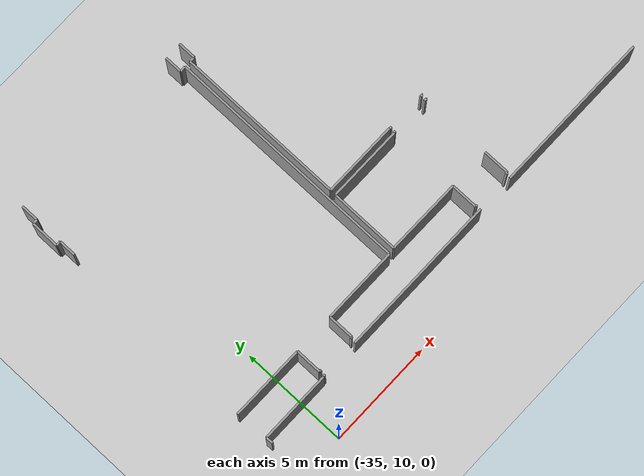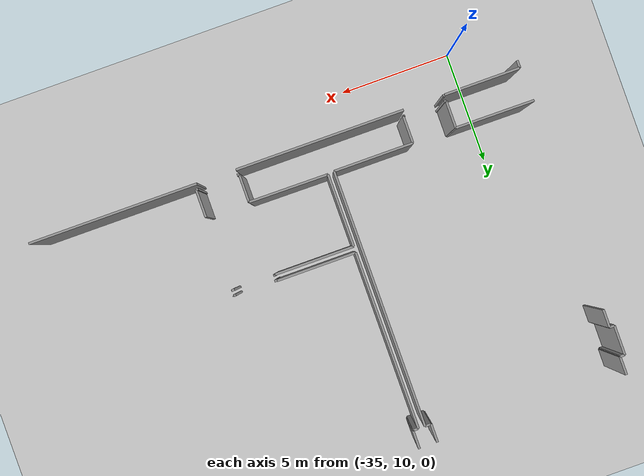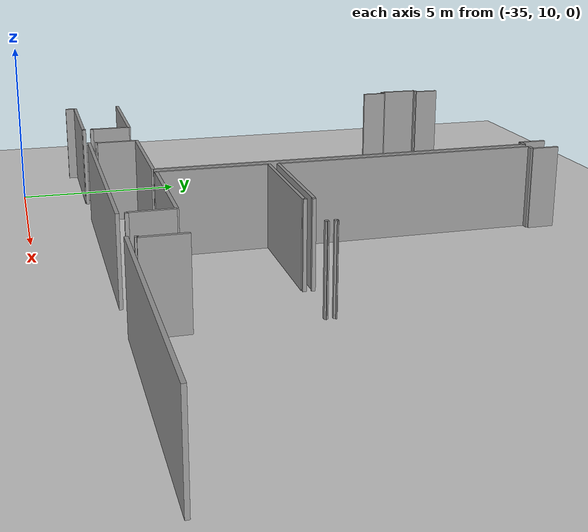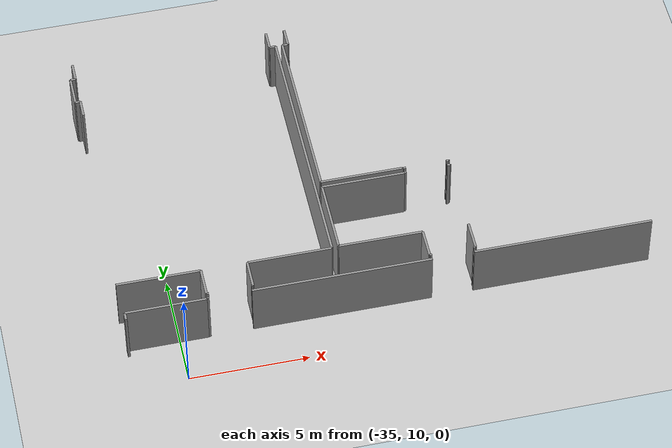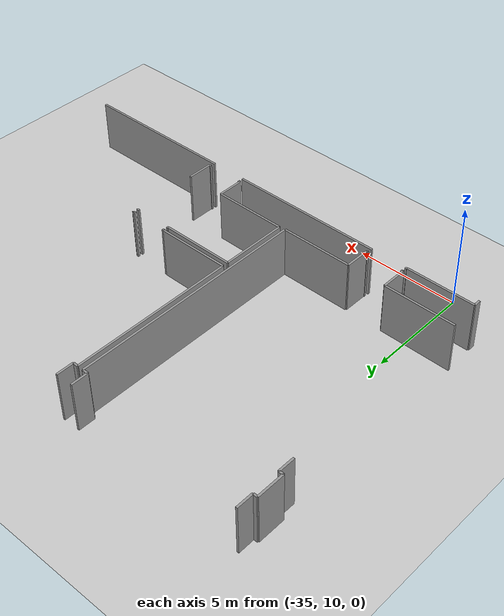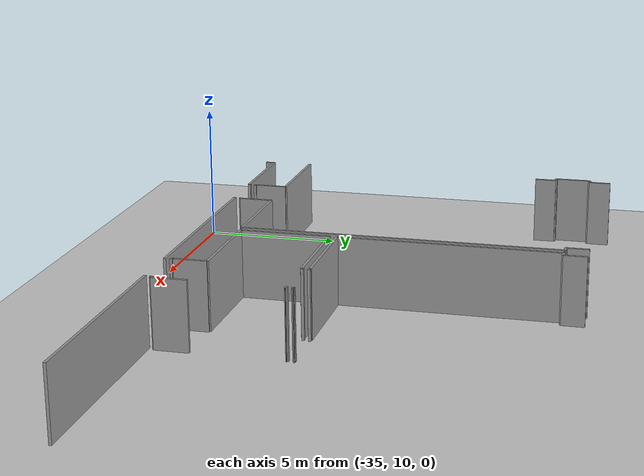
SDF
<sdf version="1.6">
 <world name="default">
  <model name="ground_plane">
   <static>1</static>
   <link name="link">
    <collision name="collision">
     <geometry><plane><normal>0 0 1</normal><size>100 100</size></plane></geometry>
     <surface><friction><ode><mu>100</mu><mu2>50</mu2></ode></friction></surface>
    </collision>
    <visual name="visual">
     <cast_shadows>0</cast_shadows>
     <geometry><plane><normal>0 0 1</normal><size>100 100</size></plane></geometry>
     <material>
      <script><uri>file://media/materials/scripts/gazebo.material</uri><name>Gazebo/Grey</name></script>
     </material>
    </visual>
   </link>
  </model>
  <model name="50045368">
   <static>1</static>
   <link name="Wall_37">
    <collision name="Wall_37_Collision">
     <geometry><box><size>0.793392630241 0.1 2.5</size></box></geometry>
     <pose>0.396696315121 0 1.25 0 0 0</pose>
    </collision>
    <visual name="Wall_37_Visual">
     <pose>0.396696315121 0 1.25 0 0 0</pose>
     <geometry><box><size>0.793392630241 0.1 2.5</size></box></geometry>
     <material>
      <script><uri>file://media/materials/scripts/gazebo.material</uri><name>Gazebo/Grey</name></script>
      <ambient>1 1 1 1</ambient>
     </material>
    </visual>
    <pose>15.7598475222 -2.925158831 0 0 0 1.57079632679</pose>
   </link>
   <link name="Wall_38">
    <collision name="Wall_38_Collision">
     <geometry><box><size>0.211817026684 0.1 2.5</size></box></geometry>
     <pose>0.105908513342 0 1.25 0 0 0</pose>
    </collision>
    <visual name="Wall_38_Visual">
     <pose>0.105908513342 0 1.25 0 0 0</pose>
     <geometry><box><size>0.211817026684 0.1 2.5</size></box></geometry>
     <material>
      <script><uri>file://media/materials/scripts/gazebo.material</uri><name>Gazebo/Grey</name></script>
      <ambient>1 1 1 1</ambient>
     </material>
    </visual>
    <pose>15.7598475222 -2.13176620076 0 0 0 3.14159265359</pose>
   </link>
   <link name="Wall_39">
    <collision name="Wall_39_Collision">
     <geometry><box><size>1.30470139771 0.1 2.5</size></box></geometry>
     <pose>0.652350698856 0 1.25 0 0 0</pose>
    </collision>
    <visual name="Wall_39_Visual">
     <pose>0.652350698856 0 1.25 0 0 0</pose>
     <geometry><box><size>1.30470139771 0.1 2.5</size></box></geometry>
     <material>
      <script><uri>file://media/materials/scripts/gazebo.material</uri><name>Gazebo/Grey</name></script>
      <ambient>1 1 1 1</ambient>
     </material>
    </visual>
    <pose>15.5480304956 -2.13176620076 0 0 0 1.57079632679</pose>
   </link>
   <link name="Wall_40">
    <collision name="Wall_40_Collision">
     <geometry><box><size>0.212452350699 0.1 2.5</size></box></geometry>
     <pose>0.106226175349 0 1.25 0 0 0</pose>
    </collision>
    <visual name="Wall_40_Visual">
     <pose>0.106226175349 0 1.25 0 0 0</pose>
     <geometry><box><size>0.212452350699 0.1 2.5</size></box></geometry>
     <material>
      <script><uri>file://media/materials/scripts/gazebo.material</uri><name>Gazebo/Grey</name></script>
      <ambient>1 1 1 1</ambient>
     </material>
    </visual>
    <pose>15.5480304956 -0.82706480305 0 0 0 0.0</pose>
   </link>
   <link name="Wall_41">
    <collision name="Wall_41_Collision">
     <geometry><box><size>0.812960609911 0.1 2.5</size></box></geometry>
     <pose>0.406480304956 0 1.25 0 0 0</pose>
    </collision>
    <visual name="Wall_41_Visual">
     <pose>0.406480304956 0 1.25 0 0 0</pose>
     <geometry><box><size>0.812960609911 0.1 2.5</size></box></geometry>
     <material>
      <script><uri>file://media/materials/scripts/gazebo.material</uri><name>Gazebo/Grey</name></script>
      <ambient>1 1 1 1</ambient>
     </material>
    </visual>
    <pose>15.7604828463 -0.82706480305 0 0 0 1.57079632679</pose>
   </link>
   <link name="Wall_42">
    <collision name="Wall_42_Collision">
     <geometry><box><size>0.80876747141 0.1 2.5</size></box></geometry>
     <pose>0.404383735705 0 1.25 0 0 0</pose>
    </collision>
    <visual name="Wall_42_Visual">
     <pose>0.404383735705 0 1.25 0 0 0</pose>
     <geometry><box><size>0.80876747141 0.1 2.5</size></box></geometry>
     <material>
      <script><uri>file://media/materials/scripts/gazebo.material</uri><name>Gazebo/Grey</name></script>
      <ambient>1 1 1 1</ambient>
     </material>
    </visual>
    <pose>24.2033036849 -0.0141041931385 0 0 0 -1.57079632679</pose>
   </link>
   <link name="Wall_43">
    <collision name="Wall_43_Collision">
     <geometry><box><size>0.266963151207 0.1 2.5</size></box></geometry>
     <pose>0.133481575604 0 1.25 0 0 0</pose>
    </collision>
    <visual name="Wall_43_Visual">
     <pose>0.133481575604 0 1.25 0 0 0</pose>
     <geometry><box><size>0.266963151207 0.1 2.5</size></box></geometry>
     <material>
      <script><uri>file://media/materials/scripts/gazebo.material</uri><name>Gazebo/Grey</name></script>
      <ambient>1 1 1 1</ambient>
     </material>
    </visual>
    <pose>24.2033036849 -0.822871664549 0 0 0 0.0</pose>
   </link>
   <link name="Wall_44">
    <collision name="Wall_44_Collision">
     <geometry><box><size>11.3900889454 0.1 2.5</size></box></geometry>
     <pose>5.69504447268 0 1.25 0 0 0</pose>
    </collision>
    <visual name="Wall_44_Visual">
     <pose>5.69504447268 0 1.25 0 0 0</pose>
     <geometry><box><size>11.3900889454 0.1 2.5</size></box></geometry>
     <material>
      <script><uri>file://media/materials/scripts/gazebo.material</uri><name>Gazebo/Grey</name></script>
      <ambient>1 1 1 1</ambient>
     </material>
    </visual>
    <pose>24.4702668361 -0.822871664549 0 0 0 -1.57079632679</pose>
   </link>
   <link name="Wall_45">
    <collision name="Wall_45_Collision">
     <geometry><box><size>3.51817026684 0.1 2.5</size></box></geometry>
     <pose>1.75908513342 0 1.25 0 0 0</pose>
    </collision>
    <visual name="Wall_45_Visual">
     <pose>1.75908513342 0 1.25 0 0 0</pose>
     <geometry><box><size>3.51817026684 0.1 2.5</size></box></geometry>
     <material>
      <script><uri>file://media/materials/scripts/gazebo.material</uri><name>Gazebo/Grey</name></script>
      <ambient>1 1 1 1</ambient>
     </material>
    </visual>
    <pose>24.4702668361 -12.2129606099 0 0 0 3.14159265359</pose>
   </link>
   <link name="Wall_46">
    <collision name="Wall_46_Collision">
     <geometry><box><size>1.20470139771 0.1 2.5</size></box></geometry>
     <pose>0.602350698856 0 1.25 0 0 0</pose>
    </collision>
    <visual name="Wall_46_Visual">
     <pose>0.602350698856 0 1.25 0 0 0</pose>
     <geometry><box><size>1.20470139771 0.1 2.5</size></box></geometry>
     <material>
      <script><uri>file://media/materials/scripts/gazebo.material</uri><name>Gazebo/Grey</name></script>
      <ambient>1 1 1 1</ambient>
     </material>
    </visual>
    <pose>20.9520965693 -12.2129606099 0 0 0 -1.57079632679</pose>
   </link>
   <link name="Wall_47">
    <collision name="Wall_47_Collision">
     <geometry><box><size>0.0749682337992 0.1 2.5</size></box></geometry>
     <pose>0.0374841168996 0 1.25 0 0 0</pose>
    </collision>
    <visual name="Wall_47_Visual">
     <pose>0.0374841168996 0 1.25 0 0 0</pose>
     <geometry><box><size>0.0749682337992 0.1 2.5</size></box></geometry>
     <material>
      <script><uri>file://media/materials/scripts/gazebo.material</uri><name>Gazebo/Grey</name></script>
      <ambient>1 1 1 1</ambient>
     </material>
    </visual>
    <pose>20.9520965693 -13.4176620076 0 0 0 3.14159265359</pose>
   </link>
   <link name="Wall_48">
    <collision name="Wall_48_Collision">
     <geometry><box><size>0.0914866581957 0.1 2.5</size></box></geometry>
     <pose>0.0457433290978 0 1.25 0 0 0</pose>
    </collision>
    <visual name="Wall_48_Visual">
     <pose>0.0457433290978 0 1.25 0 0 0</pose>
     <geometry><box><size>0.0914866581957 0.1 2.5</size></box></geometry>
     <material>
      <script><uri>file://media/materials/scripts/gazebo.material</uri><name>Gazebo/Grey</name></script>
      <ambient>1 1 1 1</ambient>
     </material>
    </visual>
    <pose>19.1285895807 -13.4176620076 0 0 0 3.14159265359</pose>
   </link>
   <link name="Wall_49">
    <collision name="Wall_49_Collision">
     <geometry><box><size>1.20864040661 0.1 2.5</size></box></geometry>
     <pose>0.604320203304 0 1.25 0 0 0</pose>
    </collision>
    <visual name="Wall_49_Visual">
     <pose>0.604320203304 0 1.25 0 0 0</pose>
     <geometry><box><size>1.20864040661 0.1 2.5</size></box></geometry>
     <material>
      <script><uri>file://media/materials/scripts/gazebo.material</uri><name>Gazebo/Grey</name></script>
      <ambient>1 1 1 1</ambient>
     </material>
    </visual>
    <pose>19.0371029225 -13.4176620076 0 0 0 1.57079632679</pose>
   </link>
   <link name="Wall_50">
    <collision name="Wall_50_Collision">
     <geometry><box><size>3.49647942463 0.1 2.5</size></box></geometry>
     <pose>1.74823971231 0 1.25 0 0 0</pose>
    </collision>
    <visual name="Wall_50_Visual">
     <pose>1.74823971231 0 1.25 0 0 0</pose>
     <geometry><box><size>3.49647942463 0.1 2.5</size></box></geometry>
     <material>
      <script><uri>file://media/materials/scripts/gazebo.material</uri><name>Gazebo/Grey</name></script>
      <ambient>1 1 1 1</ambient>
     </material>
    </visual>
    <pose>19.0371029225 -12.209021601 0 0 0 3.13697735765</pose>
   </link>
   <link name="Wall_51">
    <collision name="Wall_51_Collision">
     <geometry><box><size>7.85794155019 0.1 2.5</size></box></geometry>
     <pose>3.9289707751 0 1.25 0 0 0</pose>
    </collision>
    <visual name="Wall_51_Visual">
     <pose>3.9289707751 0 1.25 0 0 0</pose>
     <geometry><box><size>7.85794155019 0.1 2.5</size></box></geometry>
     <material>
      <script><uri>file://media/materials/scripts/gazebo.material</uri><name>Gazebo/Grey</name></script>
      <ambient>1 1 1 1</ambient>
     </material>
    </visual>
    <pose>24.7654383736 -8.68398983482 0 0 0 1.57079632679</pose>
   </link>
   <link name="Wall_52">
    <collision name="Wall_52_Collision">
     <geometry><box><size>0.24498094028 0.1 2.5</size></box></geometry>
     <pose>0.12249047014 0 1.25 0 0 0</pose>
    </collision>
    <visual name="Wall_52_Visual">
     <pose>0.12249047014 0 1.25 0 0 0</pose>
     <geometry><box><size>0.24498094028 0.1 2.5</size></box></geometry>
     <material>
      <script><uri>file://media/materials/scripts/gazebo.material</uri><name>Gazebo/Grey</name></script>
      <ambient>1 1 1 1</ambient>
     </material>
    </visual>
    <pose>24.7654383736 -0.826048284625 0 0 0 0.0</pose>
   </link>
   <link name="Wall_53">
    <collision name="Wall_53_Collision">
     <geometry><box><size>0.826048284625 0.1 2.5</size></box></geometry>
     <pose>0.413024142313 0 1.25 0 0 0</pose>
    </collision>
    <visual name="Wall_53_Visual">
     <pose>0.413024142313 0 1.25 0 0 0</pose>
     <geometry><box><size>0.826048284625 0.1 2.5</size></box></geometry>
     <material>
      <script><uri>file://media/materials/scripts/gazebo.material</uri><name>Gazebo/Grey</name></script>
      <ambient>1 1 1 1</ambient>
     </material>
    </visual>
    <pose>25.0104193139 -0.826048284625 0 0 0 1.57079632679</pose>
   </link>
   <link name="Wall_66">
    <collision name="Wall_66_Collision">
     <geometry><box><size>0.0259212198221 0.1 2.5</size></box></geometry>
     <pose>0.0129606099111 0 1.25 0 0 0</pose>
    </collision>
    <visual name="Wall_66_Visual">
     <pose>0.0129606099111 0 1.25 0 0 0</pose>
     <geometry><box><size>0.0259212198221 0.1 2.5</size></box></geometry>
     <material>
      <script><uri>file://media/materials/scripts/gazebo.material</uri><name>Gazebo/Grey</name></script>
      <ambient>1 1 1 1</ambient>
     </material>
    </visual>
    <pose>30.2152477764 -8.67229987294 0 0 0 -1.57079632679</pose>
   </link>
   <link name="Wall_67">
    <collision name="Wall_67_Collision">
     <geometry><box><size>0.102033036849 0.1 2.5</size></box></geometry>
     <pose>0.0510165184244 0 1.25 0 0 0</pose>
    </collision>
    <visual name="Wall_67_Visual">
     <pose>0.0510165184244 0 1.25 0 0 0</pose>
     <geometry><box><size>0.102033036849 0.1 2.5</size></box></geometry>
     <material>
      <script><uri>file://media/materials/scripts/gazebo.material</uri><name>Gazebo/Grey</name></script>
      <ambient>1 1 1 1</ambient>
     </material>
    </visual>
    <pose>30.2152477764 -8.69822109276 0 0 0 3.14159265359</pose>
   </link>
   <link name="Wall_68">
    <collision name="Wall_68_Collision">
     <geometry><box><size>0.104447268107 0.1 2.5</size></box></geometry>
     <pose>0.0522236340534 0 1.25 0 0 0</pose>
    </collision>
    <visual name="Wall_68_Visual">
     <pose>0.0522236340534 0 1.25 0 0 0</pose>
     <geometry><box><size>0.104447268107 0.1 2.5</size></box></geometry>
     <material>
      <script><uri>file://media/materials/scripts/gazebo.material</uri><name>Gazebo/Grey</name></script>
      <ambient>1 1 1 1</ambient>
     </material>
    </visual>
    <pose>28.3794155019 -8.69822109276 0 0 0 3.14159265359</pose>
   </link>
   <link name="Wall_69">
    <collision name="Wall_69_Collision">
     <geometry><box><size>0.0190597204574 0.1 2.5</size></box></geometry>
     <pose>0.00952986022872 0 1.25 0 0 0</pose>
    </collision>
    <visual name="Wall_69_Visual">
     <pose>0.00952986022872 0 1.25 0 0 0</pose>
     <geometry><box><size>0.0190597204574 0.1 2.5</size></box></geometry>
     <material>
      <script><uri>file://media/materials/scripts/gazebo.material</uri><name>Gazebo/Grey</name></script>
      <ambient>1 1 1 1</ambient>
     </material>
    </visual>
    <pose>28.2749682338 -8.69822109276 0 0 0 1.57079632679</pose>
   </link>
   <link name="Wall_70">
    <collision name="Wall_70_Collision">
     <geometry><box><size>3.50953318176 0.1 2.5</size></box></geometry>
     <pose>1.75476659088 0 1.25 0 0 0</pose>
    </collision>
    <visual name="Wall_70_Visual">
     <pose>1.75476659088 0 1.25 0 0 0</pose>
     <geometry><box><size>3.50953318176 0.1 2.5</size></box></geometry>
     <material>
      <script><uri>file://media/materials/scripts/gazebo.material</uri><name>Gazebo/Grey</name></script>
      <ambient>1 1 1 1</ambient>
     </material>
    </visual>
    <pose>28.2749682338 -8.6791613723 0 0 0 -3.14021683983</pose>
   </link>
   <link name="Wall_71">
    <collision name="Wall_71_Collision">
     <geometry><box><size>3.2166454892 0.1 2.5</size></box></geometry>
     <pose>1.6083227446 0 1.25 0 0 0</pose>
    </collision>
    <visual name="Wall_71_Visual">
     <pose>1.6083227446 0 1.25 0 0 0</pose>
     <geometry><box><size>3.2166454892 0.1 2.5</size></box></geometry>
     <material>
      <script><uri>file://media/materials/scripts/gazebo.material</uri><name>Gazebo/Grey</name></script>
      <ambient>1 1 1 1</ambient>
     </material>
    </visual>
    <pose>24.759339263 -12.1719186785 0 0 0 1.57079632679</pose>
   </link>
   <link name="Wall_72">
    <collision name="Wall_72_Collision">
     <geometry><box><size>3.51321473952 0.1 2.5</size></box></geometry>
     <pose>1.75660736976 0 1.25 0 0 0</pose>
    </collision>
    <visual name="Wall_72_Visual">
     <pose>1.75660736976 0 1.25 0 0 0</pose>
     <geometry><box><size>3.51321473952 0.1 2.5</size></box></geometry>
     <material>
      <script><uri>file://media/materials/scripts/gazebo.material</uri><name>Gazebo/Grey</name></script>
      <ambient>1 1 1 1</ambient>
     </material>
    </visual>
    <pose>24.759339263 -8.95527318933 0 0 0 0.0</pose>
   </link>
   <link name="Wall_73">
    <collision name="Wall_73_Collision">
     <geometry><box><size>0.0243964421855 0.1 2.5</size></box></geometry>
     <pose>0.0121982210928 0 1.25 0 0 0</pose>
    </collision>
    <visual name="Wall_73_Visual">
     <pose>0.0121982210928 0 1.25 0 0 0</pose>
     <geometry><box><size>0.0243964421855 0.1 2.5</size></box></geometry>
     <material>
      <script><uri>file://media/materials/scripts/gazebo.material</uri><name>Gazebo/Grey</name></script>
      <ambient>1 1 1 1</ambient>
     </material>
    </visual>
    <pose>28.2725540025 -8.95527318933 0 0 0 1.57079632679</pose>
   </link>
   <link name="Wall_74">
    <collision name="Wall_74_Collision">
     <geometry><box><size>0.0808132147395 0.1 2.5</size></box></geometry>
     <pose>0.0404066073698 0 1.25 0 0 0</pose>
    </collision>
    <visual name="Wall_74_Visual">
     <pose>0.0404066073698 0 1.25 0 0 0</pose>
     <geometry><box><size>0.0808132147395 0.1 2.5</size></box></geometry>
     <material>
      <script><uri>file://media/materials/scripts/gazebo.material</uri><name>Gazebo/Grey</name></script>
      <ambient>1 1 1 1</ambient>
     </material>
    </visual>
    <pose>28.2725540025 -8.93087674714 0 0 0 0.0</pose>
   </link>
   <link name="Wall_75">
    <collision name="Wall_75_Collision">
     <geometry><box><size>0.12249047014 0.1 2.5</size></box></geometry>
     <pose>0.0612452350699 0 1.25 0 0 0</pose>
    </collision>
    <visual name="Wall_75_Visual">
     <pose>0.0612452350699 0 1.25 0 0 0</pose>
     <geometry><box><size>0.12249047014 0.1 2.5</size></box></geometry>
     <material>
      <script><uri>file://media/materials/scripts/gazebo.material</uri><name>Gazebo/Grey</name></script>
      <ambient>1 1 1 1</ambient>
     </material>
    </visual>
    <pose>30.0955527319 -8.93087674714 0 0 0 0.0</pose>
   </link>
   <link name="Wall_76">
    <collision name="Wall_76_Collision">
     <geometry><box><size>0.0110546378653 0.1 2.5</size></box></geometry>
     <pose>0.00552731893265 0 1.25 0 0 0</pose>
    </collision>
    <visual name="Wall_76_Visual">
     <pose>0.00552731893265 0 1.25 0 0 0</pose>
     <geometry><box><size>0.0110546378653 0.1 2.5</size></box></geometry>
     <material>
      <script><uri>file://media/materials/scripts/gazebo.material</uri><name>Gazebo/Grey</name></script>
      <ambient>1 1 1 1</ambient>
     </material>
    </visual>
    <pose>30.218043202 -8.93087674714 0 0 0 -1.57079632679</pose>
   </link>
   <link name="Wall_80">
    <collision name="Wall_80_Collision">
     <geometry><box><size>1.23227445997 0.1 2.5</size></box></geometry>
     <pose>0.616137229987 0 1.25 0 0 0</pose>
    </collision>
    <visual name="Wall_80_Visual">
     <pose>0.616137229987 0 1.25 0 0 0</pose>
     <geometry><box><size>1.23227445997 0.1 2.5</size></box></geometry>
     <material>
      <script><uri>file://media/materials/scripts/gazebo.material</uri><name>Gazebo/Grey</name></script>
      <ambient>1 1 1 1</ambient>
     </material>
    </visual>
    <pose>30.2025412961 -12.1983481576 0 0 0 -1.57079632679</pose>
   </link>
   <link name="Wall_81">
    <collision name="Wall_81_Collision">
     <geometry><box><size>0.0930114358323 0.1 2.5</size></box></geometry>
     <pose>0.0465057179161 0 1.25 0 0 0</pose>
    </collision>
    <visual name="Wall_81_Visual">
     <pose>0.0465057179161 0 1.25 0 0 0</pose>
     <geometry><box><size>0.0930114358323 0.1 2.5</size></box></geometry>
     <material>
      <script><uri>file://media/materials/scripts/gazebo.material</uri><name>Gazebo/Grey</name></script>
      <ambient>1 1 1 1</ambient>
     </material>
    </visual>
    <pose>30.2025412961 -13.4306226175 0 0 0 3.14159265359</pose>
   </link>
   <link name="Wall_82">
    <collision name="Wall_82_Collision">
     <geometry><box><size>0.0939008894536 0.1 2.5</size></box></geometry>
     <pose>0.0469504447268 0 1.25 0 0 0</pose>
    </collision>
    <visual name="Wall_82_Visual">
     <pose>0.0469504447268 0 1.25 0 0 0</pose>
     <geometry><box><size>0.0939008894536 0.1 2.5</size></box></geometry>
     <material>
      <script><uri>file://media/materials/scripts/gazebo.material</uri><name>Gazebo/Grey</name></script>
      <ambient>1 1 1 1</ambient>
     </material>
    </visual>
    <pose>28.3721728081 -13.4306226175 0 0 0 3.14159265359</pose>
   </link>
   <link name="Wall_83">
    <collision name="Wall_83_Collision">
     <geometry><box><size>1.23964421855 0.1 2.5</size></box></geometry>
     <pose>0.619822109276 0 1.25 0 0 0</pose>
    </collision>
    <visual name="Wall_83_Visual">
     <pose>0.619822109276 0 1.25 0 0 0</pose>
     <geometry><box><size>1.23964421855 0.1 2.5</size></box></geometry>
     <material>
      <script><uri>file://media/materials/scripts/gazebo.material</uri><name>Gazebo/Grey</name></script>
      <ambient>1 1 1 1</ambient>
     </material>
    </visual>
    <pose>28.2782719187 -13.4306226175 0 0 0 1.57079632679</pose>
   </link>
   <link name="Wall_84">
    <collision name="Wall_84_Collision">
     <geometry><box><size>3.5189842722 0.1 2.5</size></box></geometry>
     <pose>1.7594921361 0 1.25 0 0 0</pose>
    </collision>
    <visual name="Wall_84_Visual">
     <pose>1.7594921361 0 1.25 0 0 0</pose>
     <geometry><box><size>3.5189842722 0.1 2.5</size></box></geometry>
     <material>
      <script><uri>file://media/materials/scripts/gazebo.material</uri><name>Gazebo/Grey</name></script>
      <ambient>1 1 1 1</ambient>
     </material>
    </visual>
    <pose>28.2782719187 -12.190978399 0 0 0 3.13617637089</pose>
   </link>
   <link name="Wall_120">
    <collision name="Wall_120_Collision">
     <geometry><box><size>0.328716645489 0.1 2.5</size></box></geometry>
     <pose>0.164358322745 0 1.25 0 0 0</pose>
    </collision>
    <visual name="Wall_120_Visual">
     <pose>0.164358322745 0 1.25 0 0 0</pose>
     <geometry><box><size>0.328716645489 0.1 2.5</size></box></geometry>
     <material>
      <script><uri>file://media/materials/scripts/gazebo.material</uri><name>Gazebo/Grey</name></script>
      <ambient>1 1 1 1</ambient>
     </material>
    </visual>
    <pose>15.6506988564 -14.0120711563 0 0 0 1.57079632679</pose>
   </link>
   <link name="Wall_121">
    <collision name="Wall_121_Collision">
     <geometry><box><size>3.35972045743 0.1 2.5</size></box></geometry>
     <pose>1.67986022872 0 1.25 0 0 0</pose>
    </collision>
    <visual name="Wall_121_Visual">
     <pose>1.67986022872 0 1.25 0 0 0</pose>
     <geometry><box><size>3.35972045743 0.1 2.5</size></box></geometry>
     <material>
      <script><uri>file://media/materials/scripts/gazebo.material</uri><name>Gazebo/Grey</name></script>
      <ambient>1 1 1 1</ambient>
     </material>
    </visual>
    <pose>15.6506988564 -13.6833545108 0 0 0 0.0</pose>
   </link>
   <link name="Wall_122">
    <collision name="Wall_122_Collision">
     <geometry><box><size>0.0240152477764 0.1 2.5</size></box></geometry>
     <pose>0.0120076238882 0 1.25 0 0 0</pose>
    </collision>
    <visual name="Wall_122_Visual">
     <pose>0.0120076238882 0 1.25 0 0 0</pose>
     <geometry><box><size>0.0240152477764 0.1 2.5</size></box></geometry>
     <material>
      <script><uri>file://media/materials/scripts/gazebo.material</uri><name>Gazebo/Grey</name></script>
      <ambient>1 1 1 1</ambient>
     </material>
    </visual>
    <pose>19.0104193139 -13.6833545108 0 0 0 1.57079632679</pose>
   </link>
   <link name="Wall_123">
    <collision name="Wall_123_Collision">
     <geometry><box><size>0.0902160101652 0.1 2.5</size></box></geometry>
     <pose>0.0451080050826 0 1.25 0 0 0</pose>
    </collision>
    <visual name="Wall_123_Visual">
     <pose>0.0451080050826 0 1.25 0 0 0</pose>
     <geometry><box><size>0.0902160101652 0.1 2.5</size></box></geometry>
     <material>
      <script><uri>file://media/materials/scripts/gazebo.material</uri><name>Gazebo/Grey</name></script>
      <ambient>1 1 1 1</ambient>
     </material>
    </visual>
    <pose>19.0104193139 -13.659339263 0 0 0 0.0</pose>
   </link>
   <link name="Wall_124">
    <collision name="Wall_124_Collision">
     <geometry><box><size>7.49377382465 0.1 2.5</size></box></geometry>
     <pose>3.74688691233 0 1.25 0 0 0</pose>
    </collision>
    <visual name="Wall_124_Visual">
     <pose>3.74688691233 0 1.25 0 0 0</pose>
     <geometry><box><size>7.49377382465 0.1 2.5</size></box></geometry>
     <material>
      <script><uri>file://media/materials/scripts/gazebo.material</uri><name>Gazebo/Grey</name></script>
      <ambient>1 1 1 1</ambient>
     </material>
    </visual>
    <pose>20.8519695044 -13.659339263 0 0 0 0.0</pose>
   </link>
   <link name="Wall_125">
    <collision name="Wall_125_Collision">
     <geometry><box><size>7.50736975858 0.1 2.5</size></box></geometry>
     <pose>3.75368487929 0 1.25 0 0 0</pose>
    </collision>
    <visual name="Wall_125_Visual">
     <pose>3.75368487929 0 1.25 0 0 0</pose>
     <geometry><box><size>7.50736975858 0.1 2.5</size></box></geometry>
     <material>
      <script><uri>file://media/materials/scripts/gazebo.material</uri><name>Gazebo/Grey</name></script>
      <ambient>1 1 1 1</ambient>
     </material>
    </visual>
    <pose>30.0891994917 -13.659339263 0 0 0 0.0</pose>
   </link>
   <pose>-52.8 25.6383100381 0 0 0 0</pose>
  </model>
 </world>
</sdf>
